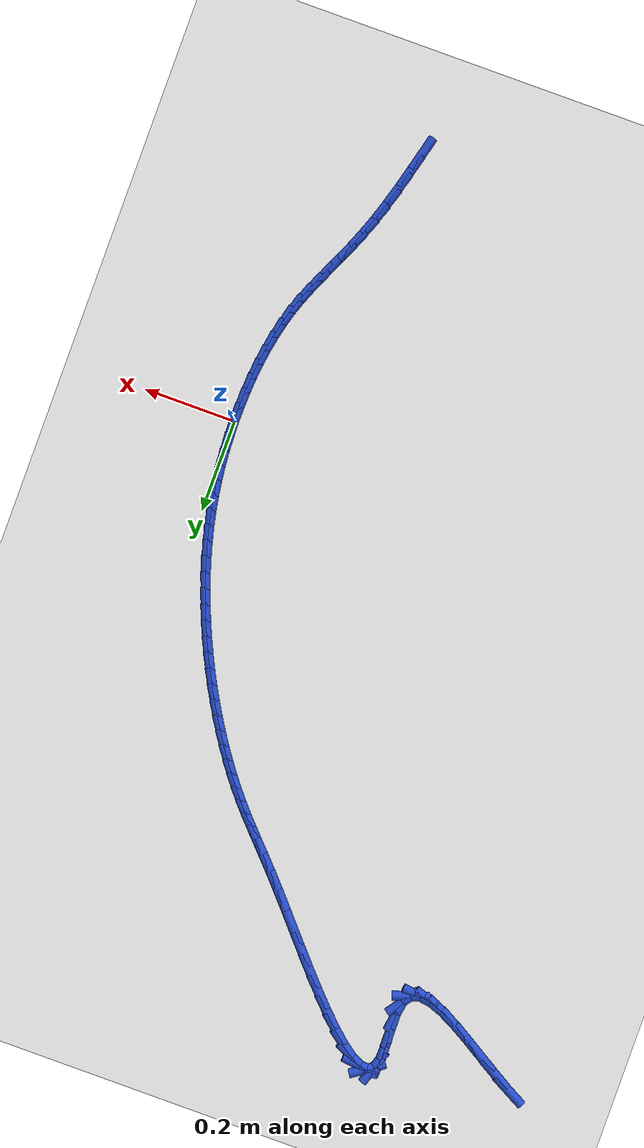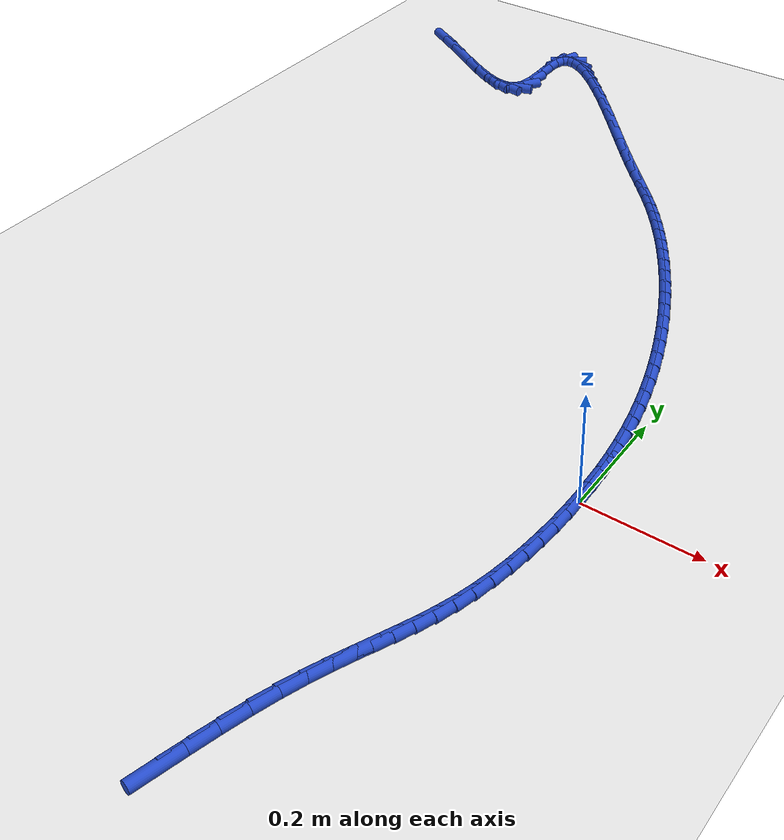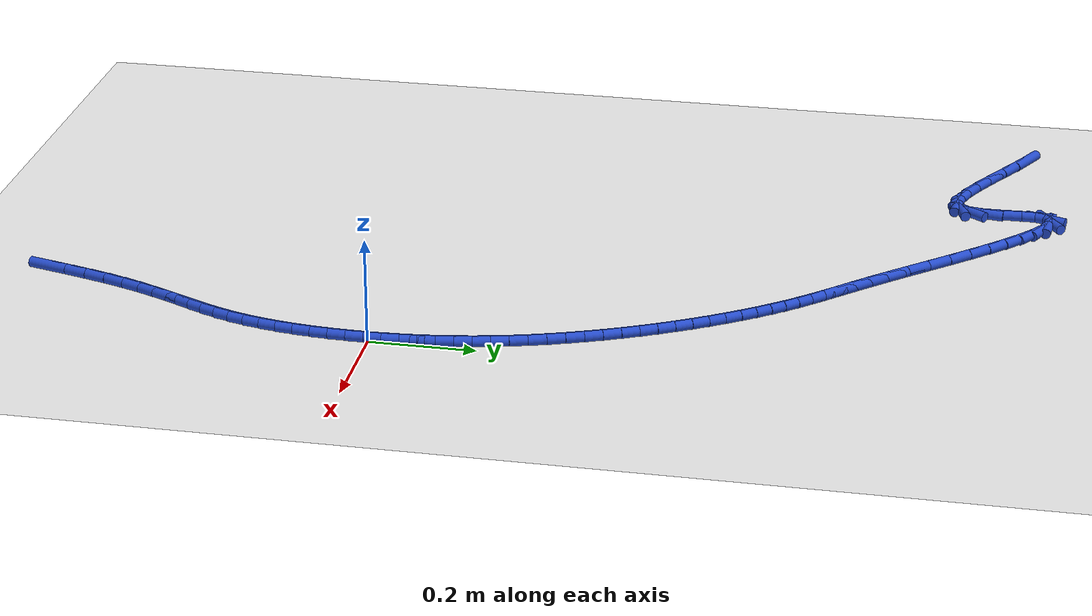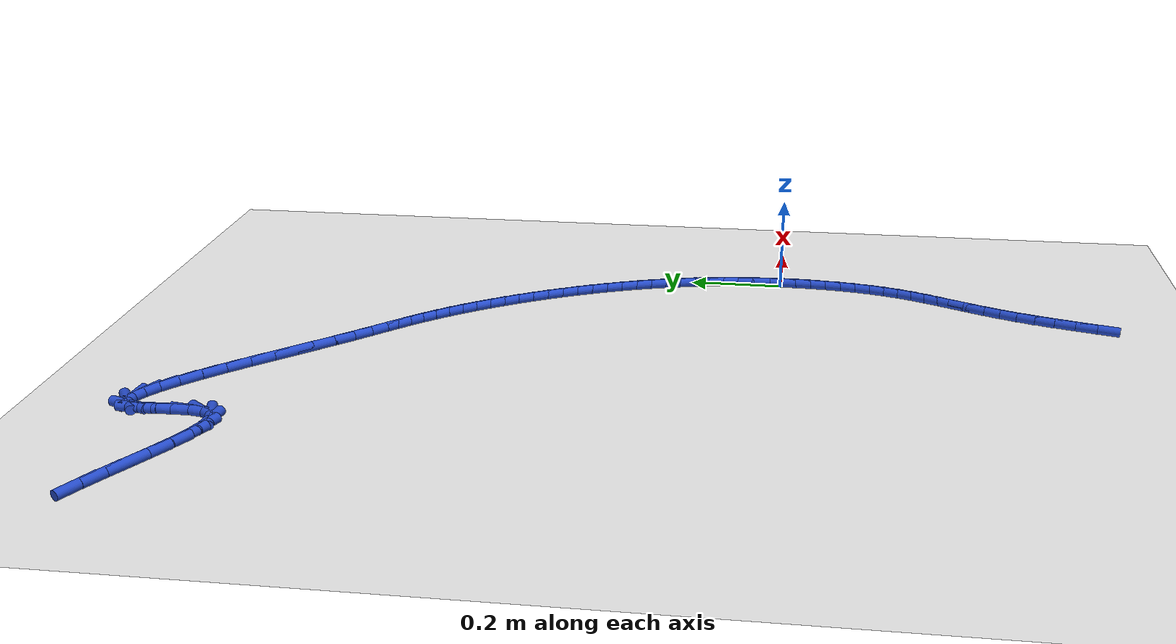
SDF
<sdf version="1.6">
 <world name="default">
  <model name="ground_plane">
   <static>1</static>
   <link name="link">
    <collision name="collision">
     <geometry><plane><normal>0 0 1</normal><size>100 100</size></plane></geometry>
     <surface><friction><ode><mu>100</mu><mu2>50</mu2></ode></friction></surface>
    </collision>
    <visual name="visual">
     <cast_shadows>0</cast_shadows>
     <geometry><plane><normal>0 0 1</normal><size>100 100</size></plane></geometry>
     <material>
      <script><uri>file://media/materials/scripts/gazebo.material</uri><name>Gazebo/WhiteGlow</name></script>
     </material>
    </visual>
   </link>
  </model>
  <model name="line">
   <link name="link_0">
    <pose>1.734723475976807e-17 -2.7755575615628914e-17 0.01 0 1.57 -1.548209915083858</pose>
    <collision name="collision">
     <geometry><cylinder><radius>0.01</radius><length>0.08</length></cylinder></geometry>
    </collision>
    <visual name="visual">
     <material>
      <script><name>Gazebo/Blue</name><uri>file://media/materials/scripts/gazebo.material</uri></script>
     </material>
     <geometry><cylinder><radius>0.01</radius><length>0.08</length></cylinder></geometry>
    </visual>
   </link>
   <link name="link_1">
    <pose>-0.0007454547674477216 0.032998955703278 0.01 0 1.57 -1.5181772568839937</pose>
    <collision name="collision">
     <geometry><cylinder><radius>0.01</radius><length>0.08</length></cylinder></geometry>
    </collision>
    <visual name="visual">
     <material>
      <script><name>Gazebo/Blue</name><uri>file://media/materials/scripts/gazebo.material</uri></script>
     </material>
     <geometry><cylinder><radius>0.01</radius><length>0.08</length></cylinder></geometry>
    </visual>
   </link>
   <link name="link_2">
    <pose>-0.0024687261284675457 0.06571866407017606 0.01 0 1.57 -1.487441928179385</pose>
    <collision name="collision">
     <geometry><cylinder><radius>0.01</radius><length>0.08</length></cylinder></geometry>
    </collision>
    <visual name="visual">
     <material>
      <script><name>Gazebo/Blue</name><uri>file://media/materials/scripts/gazebo.material</uri></script>
     </material>
     <geometry><cylinder><radius>0.01</radius><length>0.08</length></cylinder></geometry>
    </visual>
   </link>
   <link name="link_3">
    <pose>-0.005183070146105424 0.09820710820907626 0.01 0 1.57 -1.4561899604984563</pose>
    <collision name="collision">
     <geometry><cylinder><radius>0.01</radius><length>0.08</length></cylinder></geometry>
    </collision>
    <visual name="visual">
     <material>
      <script><name>Gazebo/Blue</name><uri>file://media/materials/scripts/gazebo.material</uri></script>
     </material>
     <geometry><cylinder><radius>0.01</radius><length>0.08</length></cylinder></geometry>
    </visual>
   </link>
   <link name="link_4">
    <pose>-0.008901742883407327 0.1305122712283608 0.01 0 1.57 -1.4246199189748514</pose>
    <collision name="collision">
     <geometry><cylinder><radius>0.01</radius><length>0.08</length></cylinder></geometry>
    </collision>
    <visual name="visual">
     <material>
      <script><name>Gazebo/Blue</name><uri>file://media/materials/scripts/gazebo.material</uri></script>
     </material>
     <geometry><cylinder><radius>0.01</radius><length>0.08</length></cylinder></geometry>
    </visual>
   </link>
   <link name="link_5">
    <pose>-0.013638000403419214 0.16268213623641178 0.01 0 1.57 -1.392937703355989</pose>
    <collision name="collision">
     <geometry><cylinder><radius>0.01</radius><length>0.08</length></cylinder></geometry>
    </collision>
    <visual name="visual">
     <material>
      <script><name>Gazebo/Blue</name><uri>file://media/materials/scripts/gazebo.material</uri></script>
     </material>
     <geometry><cylinder><radius>0.01</radius><length>0.08</length></cylinder></geometry>
    </visual>
   </link>
   <link name="link_6">
    <pose>-0.01940509876918707 0.19476468634161145 0.01 0 1.57 -1.3613508756848165</pose>
    <collision name="collision">
     <geometry><cylinder><radius>0.01</radius><length>0.08</length></cylinder></geometry>
    </collision>
    <visual name="visual">
     <material>
      <script><name>Gazebo/Blue</name><uri>file://media/materials/scripts/gazebo.material</uri></script>
     </material>
     <geometry><cylinder><radius>0.01</radius><length>0.08</length></cylinder></geometry>
    </visual>
   </link>
   <link name="link_7">
    <pose>-0.026216294043756846 0.22680790465234182 0.01 0 1.57 -1.3300628873312692</pose>
    <collision name="collision">
     <geometry><cylinder><radius>0.01</radius><length>0.08</length></cylinder></geometry>
    </collision>
    <visual name="visual">
     <material>
      <script><name>Gazebo/Blue</name><uri>file://media/materials/scripts/gazebo.material</uri></script>
     </material>
     <geometry><cylinder><radius>0.01</radius><length>0.08</length></cylinder></geometry>
    </visual>
   </link>
   <link name="link_8">
    <pose>-0.034084842290151705 0.2588597742769432 0.01 0 1.57 -1.2994251704821995</pose>
    <collision name="collision">
     <geometry><cylinder><radius>0.01</radius><length>0.08</length></cylinder></geometry>
    </collision>
    <visual name="visual">
     <material>
      <script><name>Gazebo/Blue</name><uri>file://media/materials/scripts/gazebo.material</uri></script>
     </material>
     <geometry><cylinder><radius>0.01</radius><length>0.08</length></cylinder></geometry>
    </visual>
   </link>
   <link name="link_9">
    <pose>-0.043012814997350136 0.29094767351307854 0.01 0 1.57 -1.2700925666562424</pose>
    <collision name="collision">
     <geometry><cylinder><radius>0.01</radius><length>0.08</length></cylinder></geometry>
    </collision>
    <visual name="visual">
     <material>
      <script><name>Gazebo/Blue</name><uri>file://media/materials/scripts/gazebo.material</uri></script>
     </material>
     <geometry><cylinder><radius>0.01</radius><length>0.08</length></cylinder></geometry>
    </visual>
   </link>
   <link name="link_10">
    <pose>-0.05295771547616046 0.32301687481604785 0.01 0 1.57 -1.2420315779892712</pose>
    <collision name="collision">
     <geometry><cylinder><radius>0.01</radius><length>0.08</length></cylinder></geometry>
    </collision>
    <visual name="visual">
     <material>
      <script><name>Gazebo/Blue</name><uri>file://media/materials/scripts/gazebo.material</uri></script>
     </material>
     <geometry><cylinder><radius>0.01</radius><length>0.08</length></cylinder></geometry>
    </visual>
   </link>
   <link name="link_11">
    <pose>-0.06386594736075604 0.35499220223294825 0.01 0 1.57 -1.215044222370325</pose>
    <collision name="collision">
     <geometry><cylinder><radius>0.01</radius><length>0.08</length></cylinder></geometry>
    </collision>
    <visual name="visual">
     <material>
      <script><name>Gazebo/Blue</name><uri>file://media/materials/scripts/gazebo.material</uri></script>
     </material>
     <geometry><cylinder><radius>0.01</radius><length>0.08</length></cylinder></geometry>
    </visual>
   </link>
   <link name="link_12">
    <pose>-0.07568391428531034 0.38679847981087706 0.01 0 1.57 -1.1889445340298277</pose>
    <collision name="collision">
     <geometry><cylinder><radius>0.01</radius><length>0.08</length></cylinder></geometry>
    </collision>
    <visual name="visual">
     <material>
      <script><name>Gazebo/Blue</name><uri>file://media/materials/scripts/gazebo.material</uri></script>
     </material>
     <geometry><cylinder><radius>0.01</radius><length>0.08</length></cylinder></geometry>
    </visual>
   </link>
   <link name="link_13">
    <pose>-0.08835801988399669 0.4183605315969315 0.01 0 1.57 -1.1635559600941956</pose>
    <collision name="collision">
     <geometry><cylinder><radius>0.01</radius><length>0.08</length></cylinder></geometry>
    </collision>
    <visual name="visual">
     <material>
      <script><name>Gazebo/Blue</name><uri>file://media/materials/scripts/gazebo.material</uri></script>
     </material>
     <geometry><cylinder><radius>0.01</radius><length>0.08</length></cylinder></geometry>
    </visual>
   </link>
   <link name="link_14">
    <pose>-0.10183466779098857 0.4496031816382087 0.01 0 1.57 -1.1387087010911852</pose>
    <collision name="collision">
     <geometry><cylinder><radius>0.01</radius><length>0.08</length></cylinder></geometry>
    </collision>
    <visual name="visual">
     <material>
      <script><name>Gazebo/Blue</name><uri>file://media/materials/scripts/gazebo.material</uri></script>
     </material>
     <geometry><cylinder><radius>0.01</radius><length>0.08</length></cylinder></geometry>
    </visual>
   </link>
   <link name="link_15">
    <pose>-0.11606026164045935 0.48045125398180594 0.01 0 1.57 -1.114236984238482</pose>
    <collision name="collision">
     <geometry><cylinder><radius>0.01</radius><length>0.08</length></cylinder></geometry>
    </collision>
    <visual name="visual">
     <material>
      <script><name>Gazebo/Blue</name><uri>file://media/materials/scripts/gazebo.material</uri></script>
     </material>
     <geometry><cylinder><radius>0.01</radius><length>0.08</length></cylinder></geometry>
    </visual>
   </link>
   <link name="link_16">
    <pose>-0.13098120506658248 0.5108295726748207 0.01 0 1.57 -1.0899762307672962</pose>
    <collision name="collision">
     <geometry><cylinder><radius>0.01</radius><length>0.08</length></cylinder></geometry>
    </collision>
    <visual name="visual">
     <material>
      <script><name>Gazebo/Blue</name><uri>file://media/materials/scripts/gazebo.material</uri></script>
     </material>
     <geometry><cylinder><radius>0.01</radius><length>0.08</length></cylinder></geometry>
    </visual>
   </link>
   <link name="link_17">
    <pose>-0.14654390170353132 0.5406629617643499 0.01 0 1.57 -1.0657600549144857</pose>
    <collision name="collision">
     <geometry><cylinder><radius>0.01</radius><length>0.08</length></cylinder></geometry>
    </collision>
    <visual name="visual">
     <material>
      <script><name>Gazebo/Blue</name><uri>file://media/materials/scripts/gazebo.material</uri></script>
     </material>
     <geometry><cylinder><radius>0.01</radius><length>0.08</length></cylinder></geometry>
    </visual>
   </link>
   <link name="link_18">
    <pose>-0.16269475518547932 0.5698762452974911 0.01 0 1.57 -1.041417009392174</pose>
    <collision name="collision">
     <geometry><cylinder><radius>0.01</radius><length>0.08</length></cylinder></geometry>
    </collision>
    <visual name="visual">
     <material>
      <script><name>Gazebo/Blue</name><uri>file://media/materials/scripts/gazebo.material</uri></script>
     </material>
     <geometry><cylinder><radius>0.01</radius><length>0.08</length></cylinder></geometry>
    </visual>
   </link>
   <link name="link_19">
    <pose>-0.17938016914659982 0.5983942473213409 0.01 0 1.57 -1.0167669674362978</pose>
    <collision name="collision">
     <geometry><cylinder><radius>0.01</radius><length>0.08</length></cylinder></geometry>
    </collision>
    <visual name="visual">
     <material>
      <script><name>Gazebo/Blue</name><uri>file://media/materials/scripts/gazebo.material</uri></script>
     </material>
     <geometry><cylinder><radius>0.01</radius><length>0.08</length></cylinder></geometry>
    </visual>
   </link>
   <link name="link_20">
    <pose>-0.19654654722106638 0.6261417918829976 0.01 0 1.57 -0.9916170025211835</pose>
    <collision name="collision">
     <geometry><cylinder><radius>0.01</radius><length>0.08</length></cylinder></geometry>
    </collision>
    <visual name="visual">
     <material>
      <script><name>Gazebo/Blue</name><uri>file://media/materials/scripts/gazebo.material</uri></script>
     </material>
     <geometry><cylinder><radius>0.01</radius><length>0.08</length></cylinder></geometry>
    </visual>
   </link>
   <link name="link_21">
    <pose>-0.2141402930430522 0.6530437030295575 0.01 0 1.57 -0.9657565911903</pose>
    <collision name="collision">
     <geometry><cylinder><radius>0.01</radius><length>0.08</length></cylinder></geometry>
    </collision>
    <visual name="visual">
     <material>
      <script><name>Gazebo/Blue</name><uri>file://media/materials/scripts/gazebo.material</uri></script>
     </material>
     <geometry><cylinder><radius>0.01</radius><length>0.08</length></cylinder></geometry>
    </visual>
   </link>
   <link name="link_22">
    <pose>-0.2321078102467309 0.6790248048081182 0.01 0 1.57 -0.9389519199759675</pose>
    <collision name="collision">
     <geometry><cylinder><radius>0.01</radius><length>0.08</length></cylinder></geometry>
    </collision>
    <visual name="visual">
     <material>
      <script><name>Gazebo/Blue</name><uri>file://media/materials/scripts/gazebo.material</uri></script>
     </material>
     <geometry><cylinder><radius>0.01</radius><length>0.08</length></cylinder></geometry>
    </visual>
   </link>
   <link name="link_23">
    <pose>-0.25039550246627573 0.7040099212657769 0.01 0 1.57 -0.9109390222016234</pose>
    <collision name="collision">
     <geometry><cylinder><radius>0.01</radius><length>0.08</length></cylinder></geometry>
    </collision>
    <visual name="visual">
     <material>
      <script><name>Gazebo/Blue</name><uri>file://media/materials/scripts/gazebo.material</uri></script>
     </material>
     <geometry><cylinder><radius>0.01</radius><length>0.08</length></cylinder></geometry>
    </visual>
   </link>
   <link name="link_24">
    <pose>-0.26894977333586023 0.727923876449631 0.01 0 1.57 -0.8814668753098024</pose>
    <collision name="collision">
     <geometry><cylinder><radius>0.01</radius><length>0.08</length></cylinder></geometry>
    </collision>
    <visual name="visual">
     <material>
      <script><name>Gazebo/Blue</name><uri>file://media/materials/scripts/gazebo.material</uri></script>
     </material>
     <geometry><cylinder><radius>0.01</radius><length>0.08</length></cylinder></geometry>
    </visual>
   </link>
   <link name="link_25">
    <pose>-0.2877200092066353 0.7506975010942152 0.01 0 1.57 -0.8533691286584695</pose>
    <collision name="collision">
     <geometry><cylinder><radius>0.01</radius><length>0.08</length></cylinder></geometry>
    </collision>
    <visual name="visual">
     <material>
      <script><name>Gazebo/Blue</name><uri>file://media/materials/scripts/gazebo.material</uri></script>
     </material>
     <geometry><cylinder><radius>0.01</radius><length>0.08</length></cylinder></geometry>
    </visual>
   </link>
   <link name="link_26">
    <pose>-0.30681451839543594 0.7725816678897727 0.01 0 1.57 -0.8325446957663478</pose>
    <collision name="collision">
     <geometry><cylinder><radius>0.01</radius><length>0.08</length></cylinder></geometry>
    </collision>
    <visual name="visual">
     <material>
      <script><name>Gazebo/Blue</name><uri>file://media/materials/scripts/gazebo.material</uri></script>
     </material>
     <geometry><cylinder><radius>0.01</radius><length>0.08</length></cylinder></geometry>
    </visual>
   </link>
   <link name="link_27">
    <pose>-0.32657705771119194 0.7943014029612485 0.01 0 1.57 -0.8207633309209007</pose>
    <collision name="collision">
     <geometry><cylinder><radius>0.01</radius><length>0.08</length></cylinder></geometry>
    </collision>
    <visual name="visual">
     <material>
      <script><name>Gazebo/Blue</name><uri>file://media/materials/scripts/gazebo.material</uri></script>
     </material>
     <geometry><cylinder><radius>0.01</radius><length>0.08</length></cylinder></geometry>
    </visual>
   </link>
   <link name="link_28">
    <pose>-0.34737041720812895 0.8166200621699572 0.01 0 1.57 -0.8179577794529534</pose>
    <collision name="collision">
     <geometry><cylinder><radius>0.01</radius><length>0.08</length></cylinder></geometry>
    </collision>
    <visual name="visual">
     <material>
      <script><name>Gazebo/Blue</name><uri>file://media/materials/scripts/gazebo.material</uri></script>
     </material>
     <geometry><cylinder><radius>0.01</radius><length>0.08</length></cylinder></geometry>
    </visual>
   </link>
   <link name="link_29">
    <pose>-0.36955738694047285 0.8403010013772138 0.01 0 1.57 -0.8228320672777447</pose>
    <collision name="collision">
     <geometry><cylinder><radius>0.01</radius><length>0.08</length></cylinder></geometry>
    </collision>
    <visual name="visual">
     <material>
      <script><name>Gazebo/Blue</name><uri>file://media/materials/scripts/gazebo.material</uri></script>
     </material>
     <geometry><cylinder><radius>0.01</radius><length>0.08</length></cylinder></geometry>
    </visual>
   </link>
   <link name="link_30">
    <pose>-0.3935007569624495 0.8661075764443324 0.01 0 1.57 -0.8334454599610085</pose>
    <collision name="collision">
     <geometry><cylinder><radius>0.01</radius><length>0.08</length></cylinder></geometry>
    </collision>
    <visual name="visual">
     <material>
      <script><name>Gazebo/Blue</name><uri>file://media/materials/scripts/gazebo.material</uri></script>
     </material>
     <geometry><cylinder><radius>0.01</radius><length>0.08</length></cylinder></geometry>
    </visual>
   </link>
   <link name="link_31">
    <pose>-0.41956331732828483 0.8948031432326289 0.01 0 1.57 -0.8466433084690395</pose>
    <collision name="collision">
     <geometry><cylinder><radius>0.01</radius><length>0.08</length></cylinder></geometry>
    </collision>
    <visual name="visual">
     <material>
      <script><name>Gazebo/Blue</name><uri>file://media/materials/scripts/gazebo.material</uri></script>
     </material>
     <geometry><cylinder><radius>0.01</radius><length>0.08</length></cylinder></geometry>
    </visual>
   </link>
   <link name="link_32">
    <pose>-0.44801624077959057 0.9269736039240537 0.01 0 1.57 -0.8539610731692683</pose>
    <collision name="collision">
     <geometry><cylinder><radius>0.01</radius><length>0.08</length></cylinder></geometry>
    </collision>
    <visual name="visual">
     <material>
      <script><name>Gazebo/Blue</name><uri>file://media/materials/scripts/gazebo.material</uri></script>
     </material>
     <geometry><cylinder><radius>0.01</radius><length>0.08</length></cylinder></geometry>
    </visual>
   </link>
   <link name="link_33">
    <pose>-0.47846133768090254 0.961908371933856 0.01 0 1.57 -0.8538279165964507</pose>
    <collision name="collision">
     <geometry><cylinder><radius>0.01</radius><length>0.08</length></cylinder></geometry>
    </collision>
    <visual name="visual">
     <material>
      <script><name>Gazebo/Blue</name><uri>file://media/materials/scripts/gazebo.material</uri></script>
     </material>
     <geometry><cylinder><radius>0.01</radius><length>0.08</length></cylinder></geometry>
    </visual>
   </link>
   <link name="link_34">
    <pose>-0.5102034129683446 0.9983215905175425 0.01 0 1.57 -0.8471175512862784</pose>
    <collision name="collision">
     <geometry><cylinder><radius>0.01</radius><length>0.08</length></cylinder></geometry>
    </collision>
    <visual name="visual">
     <material>
      <script><name>Gazebo/Blue</name><uri>file://media/materials/scripts/gazebo.material</uri></script>
     </material>
     <geometry><cylinder><radius>0.01</radius><length>0.08</length></cylinder></geometry>
    </visual>
   </link>
   <link name="link_35">
    <pose>-0.5425459338104048 1.0349248118069303 0.01 0 1.57 -0.8334538950789813</pose>
    <collision name="collision">
     <geometry><cylinder><radius>0.01</radius><length>0.08</length></cylinder></geometry>
    </collision>
    <visual name="visual">
     <material>
      <script><name>Gazebo/Blue</name><uri>file://media/materials/scripts/gazebo.material</uri></script>
     </material>
     <geometry><cylinder><radius>0.01</radius><length>0.08</length></cylinder></geometry>
    </visual>
   </link>
   <link name="link_36">
    <pose>-0.5747923673755702 1.070429587933834 0.01 0 1.57 -0.8111633435640325</pose>
    <collision name="collision">
     <geometry><cylinder><radius>0.01</radius><length>0.08</length></cylinder></geometry>
    </collision>
    <visual name="visual">
     <material>
      <script><name>Gazebo/Blue</name><uri>file://media/materials/scripts/gazebo.material</uri></script>
     </material>
     <geometry><cylinder><radius>0.01</radius><length>0.08</length></cylinder></geometry>
    </visual>
   </link>
   <link name="link_37">
    <pose>-0.6062461808323287 1.1035474710300708 0.01 0 1.57 -0.7766095846918781</pose>
    <collision name="collision">
     <geometry><cylinder><radius>0.01</radius><length>0.08</length></cylinder></geometry>
    </collision>
    <visual name="visual">
     <material>
      <script><name>Gazebo/Blue</name><uri>file://media/materials/scripts/gazebo.material</uri></script>
     </material>
     <geometry><cylinder><radius>0.01</radius><length>0.08</length></cylinder></geometry>
    </visual>
   </link>
   <link name="link_38">
    <pose>-0.6362108413491675 1.1329900132274562 0.01 0 1.57 -0.7223291303064018</pose>
    <collision name="collision">
     <geometry><cylinder><radius>0.01</radius><length>0.08</length></cylinder></geometry>
    </collision>
    <visual name="visual">
     <material>
      <script><name>Gazebo/Blue</name><uri>file://media/materials/scripts/gazebo.material</uri></script>
     </material>
     <geometry><cylinder><radius>0.01</radius><length>0.08</length></cylinder></geometry>
    </visual>
   </link>
   <link name="link_39">
    <pose>-0.6639898160945746 1.1574687666578067 0.01 0 1.57 -0.6319359223688805</pose>
    <collision name="collision">
     <geometry><cylinder><radius>0.01</radius><length>0.08</length></cylinder></geometry>
    </collision>
    <visual name="visual">
     <material>
      <script><name>Gazebo/Blue</name><uri>file://media/materials/scripts/gazebo.material</uri></script>
     </material>
     <geometry><cylinder><radius>0.01</radius><length>0.08</length></cylinder></geometry>
    </visual>
   </link>
   <link name="link_40">
    <pose>-0.6888865722370374 1.175695283452938 0.01 0 1.57 -0.46465394815971384</pose>
    <collision name="collision">
     <geometry><cylinder><radius>0.01</radius><length>0.08</length></cylinder></geometry>
    </collision>
    <visual name="visual">
     <material>
      <script><name>Gazebo/Blue</name><uri>file://media/materials/scripts/gazebo.material</uri></script>
     </material>
     <geometry><cylinder><radius>0.01</radius><length>0.08</length></cylinder></geometry>
    </visual>
   </link>
   <link name="link_41">
    <pose>-0.7102045769450434 1.1863811157446658 0.01 0 1.57 -0.10851590374548921</pose>
    <collision name="collision">
     <geometry><cylinder><radius>0.01</radius><length>0.08</length></cylinder></geometry>
    </collision>
    <visual name="visual">
     <material>
      <script><name>Gazebo/Blue</name><uri>file://media/materials/scripts/gazebo.material</uri></script>
     </material>
     <geometry><cylinder><radius>0.01</radius><length>0.08</length></cylinder></geometry>
    </visual>
   </link>
   <link name="link_42">
    <pose>-0.72724729738708 1.188237815664807 0.01 0 1.57 0.6001540998965172</pose>
    <collision name="collision">
     <geometry><cylinder><radius>0.01</radius><length>0.08</length></cylinder></geometry>
    </collision>
    <visual name="visual">
     <material>
      <script><name>Gazebo/Blue</name><uri>file://media/materials/scripts/gazebo.material</uri></script>
     </material>
     <geometry><cylinder><radius>0.01</radius><length>0.08</length></cylinder></geometry>
    </visual>
   </link>
   <link name="link_43">
    <pose>-0.7393182007316359 1.1799769353451777 0.01 0 1.57 1.2559865538017163</pose>
    <collision name="collision">
     <geometry><cylinder><radius>0.01</radius><length>0.08</length></cylinder></geometry>
    </collision>
    <visual name="visual">
     <material>
      <script><name>Gazebo/Blue</name><uri>file://media/materials/scripts/gazebo.material</uri></script>
     </material>
     <geometry><cylinder><radius>0.01</radius><length>0.08</length></cylinder></geometry>
    </visual>
   </link>
   <link name="link_44">
    <pose>-0.7457218643800103 1.160312021067337 0.01 0 1.57 1.537572953300119</pose>
    <collision name="collision">
     <geometry><cylinder><radius>0.01</radius><length>0.08</length></cylinder></geometry>
    </collision>
    <visual name="visual">
     <material>
      <script><name>Gazebo/Blue</name><uri>file://media/materials/scripts/gazebo.material</uri></script>
     </material>
     <geometry><cylinder><radius>0.01</radius><length>0.08</length></cylinder></geometry>
    </visual>
   </link>
   <link name="link_45">
    <pose>-0.7467389472333037 1.1297098123615996 0.01 0 1.57 -1.5341523114455065</pose>
    <collision name="collision">
     <geometry><cylinder><radius>0.01</radius><length>0.08</length></cylinder></geometry>
    </collision>
    <visual name="visual">
     <material>
      <script><name>Gazebo/Blue</name><uri>file://media/materials/scripts/gazebo.material</uri></script>
     </material>
     <geometry><cylinder><radius>0.01</radius><length>0.08</length></cylinder></geometry>
    </visual>
   </link>
   <link name="link_46">
    <pose>-0.7454152828755848 1.0936037299081738 0.01 0 1.57 -1.5670487115709915</pose>
    <collision name="collision">
     <geometry><cylinder><radius>0.01</radius><length>0.08</length></cylinder></geometry>
    </collision>
    <visual name="visual">
     <material>
      <script><name>Gazebo/Blue</name><uri>file://media/materials/scripts/gazebo.material</uri></script>
     </material>
     <geometry><cylinder><radius>0.01</radius><length>0.08</length></cylinder></geometry>
    </visual>
   </link>
   <link name="link_47">
    <pose>-0.7452829797812667 1.05830061925493 0.01 0 1.57 1.4094347121905135</pose>
    <collision name="collision">
     <geometry><cylinder><radius>0.01</radius><length>0.08</length></cylinder></geometry>
    </collision>
    <visual name="visual">
     <material>
      <script><name>Gazebo/Blue</name><uri>file://media/materials/scripts/gazebo.material</uri></script>
     </material>
     <geometry><cylinder><radius>0.01</radius><length>0.08</length></cylinder></geometry>
    </visual>
   </link>
   <link name="link_48">
    <pose>-0.749872634406647 1.0301046270863108 0.01 0 1.57 0.9552593737708631</pose>
    <collision name="collision">
     <geometry><cylinder><radius>0.01</radius><length>0.08</length></cylinder></geometry>
    </collision>
    <visual name="visual">
     <material>
      <script><name>Gazebo/Blue</name><uri>file://media/materials/scripts/gazebo.material</uri></script>
     </material>
     <geometry><cylinder><radius>0.01</radius><length>0.08</length></cylinder></geometry>
    </visual>
   </link>
   <link name="link_49">
    <pose>-0.761659916201311 1.0134369174109057 0.01 0 1.57 0.3074430345813861</pose>
    <collision name="collision">
     <geometry><cylinder><radius>0.01</radius><length>0.08</length></cylinder></geometry>
    </collision>
    <visual name="visual">
     <material>
      <script><name>Gazebo/Blue</name><uri>file://media/materials/scripts/gazebo.material</uri></script>
     </material>
     <geometry><cylinder><radius>0.01</radius><length>0.08</length></cylinder></geometry>
    </visual>
   </link>
   <link name="link_50">
    <pose>-0.7802211674715076 1.007543525770775 0.01 0 1.57 -0.13214751877878148</pose>
    <collision name="collision">
     <geometry><cylinder><radius>0.01</radius><length>0.08</length></cylinder></geometry>
    </collision>
    <visual name="visual">
     <material>
      <script><name>Gazebo/Blue</name><uri>file://media/materials/scripts/gazebo.material</uri></script>
     </material>
     <geometry><cylinder><radius>0.01</radius><length>0.08</length></cylinder></geometry>
    </visual>
   </link>
   <link name="link_51">
    <pose>-0.8046389933685395 1.0107891959188111 0.01 0 1.57 -0.3510015388121623</pose>
    <collision name="collision">
     <geometry><cylinder><radius>0.01</radius><length>0.08</length></cylinder></geometry>
    </collision>
    <visual name="visual">
     <material>
      <script><name>Gazebo/Blue</name><uri>file://media/materials/scripts/gazebo.material</uri></script>
     </material>
     <geometry><cylinder><radius>0.01</radius><length>0.08</length></cylinder></geometry>
    </visual>
   </link>
   <link name="link_52">
    <pose>-0.8339959990437096 1.0215386716079062 0.01 0 1.57 -0.46193559147457736</pose>
    <collision name="collision">
     <geometry><cylinder><radius>0.01</radius><length>0.08</length></cylinder></geometry>
    </collision>
    <visual name="visual">
     <material>
      <script><name>Gazebo/Blue</name><uri>file://media/materials/scripts/gazebo.material</uri></script>
     </material>
     <geometry><cylinder><radius>0.01</radius><length>0.08</length></cylinder></geometry>
    </visual>
   </link>
   <link name="link_53">
    <pose>-0.8673747896483212 1.0381566965909526 0.01 0 1.57 -0.5192243445969936</pose>
    <collision name="collision">
     <geometry><cylinder><radius>0.01</radius><length>0.08</length></cylinder></geometry>
    </collision>
    <visual name="visual">
     <material>
      <script><name>Gazebo/Blue</name><uri>file://media/materials/scripts/gazebo.material</uri></script>
     </material>
     <geometry><cylinder><radius>0.01</radius><length>0.08</length></cylinder></geometry>
    </visual>
   </link>
   <link name="link_54">
    <pose>-0.9038579703336772 1.059008014620842 0.01 0 1.57 -0.5451075635600278</pose>
    <collision name="collision">
     <geometry><cylinder><radius>0.01</radius><length>0.08</length></cylinder></geometry>
    </collision>
    <visual name="visual">
     <material>
      <script><name>Gazebo/Blue</name><uri>file://media/materials/scripts/gazebo.material</uri></script>
     </material>
     <geometry><cylinder><radius>0.01</radius><length>0.08</length></cylinder></geometry>
    </visual>
   </link>
   <link name="link_55">
    <pose>-0.9425281462510804 1.082457369450467 0.01 0 1.57 -0.5486313282352184</pose>
    <collision name="collision">
     <geometry><cylinder><radius>0.01</radius><length>0.08</length></cylinder></geometry>
    </collision>
    <visual name="visual">
     <material>
      <script><name>Gazebo/Blue</name><uri>file://media/materials/scripts/gazebo.material</uri></script>
     </material>
     <geometry><cylinder><radius>0.01</radius><length>0.08</length></cylinder></geometry>
    </visual>
   </link>
   <link name="link_56">
    <pose>-0.9824679225518341 1.1068695048327193 0.01 0 1.57 -0.5324335473141705</pose>
    <collision name="collision">
     <geometry><cylinder><radius>0.01</radius><length>0.08</length></cylinder></geometry>
    </collision>
    <visual name="visual">
     <material>
      <script><name>Gazebo/Blue</name><uri>file://media/materials/scripts/gazebo.material</uri></script>
     </material>
     <geometry><cylinder><radius>0.01</radius><length>0.08</length></cylinder></geometry>
    </visual>
   </link>
   <link name="link_57">
    <pose>-1.0227599043872415 1.1306091645204914 0.01 0 1.57 -0.4947328696898481</pose>
    <collision name="collision">
     <geometry><cylinder><radius>0.01</radius><length>0.08</length></cylinder></geometry>
    </collision>
    <visual name="visual">
     <material>
      <script><name>Gazebo/Blue</name><uri>file://media/materials/scripts/gazebo.material</uri></script>
     </material>
     <geometry><cylinder><radius>0.01</radius><length>0.08</length></cylinder></geometry>
    </visual>
   </link>
   <link name="link_220">
    <pose>-0.18110782496518593 -0.6640848370879691 0.01 0 1.57 1.3174505041915037</pose>
    <collision name="collision">
     <geometry><cylinder><radius>0.01</radius><length>0.08</length></cylinder></geometry>
    </collision>
    <visual name="visual">
     <material>
      <script><name>Gazebo/Blue</name><uri>file://media/materials/scripts/gazebo.material</uri></script>
     </material>
     <geometry><cylinder><radius>0.01</radius><length>0.08</length></cylinder></geometry>
    </visual>
   </link>
   <link name="link_221">
    <pose>-0.1698679117743942 -0.620672227485001 0.01 0 1.57 1.3044371494900824</pose>
    <collision name="collision">
     <geometry><cylinder><radius>0.01</radius><length>0.08</length></cylinder></geometry>
    </collision>
    <visual name="visual">
     <material>
      <script><name>Gazebo/Blue</name><uri>file://media/materials/scripts/gazebo.material</uri></script>
     </material>
     <geometry><cylinder><radius>0.01</radius><length>0.08</length></cylinder></geometry>
    </visual>
   </link>
   <link name="link_222">
    <pose>-0.15835187337406 -0.5784645663481087 0.01 0 1.57 1.2840102525071602</pose>
    <collision name="collision">
     <geometry><cylinder><radius>0.01</radius><length>0.08</length></cylinder></geometry>
    </collision>
    <visual name="visual">
     <material>
      <script><name>Gazebo/Blue</name><uri>file://media/materials/scripts/gazebo.material</uri></script>
     </material>
     <geometry><cylinder><radius>0.01</radius><length>0.08</length></cylinder></geometry>
    </visual>
   </link>
   <link name="link_223">
    <pose>-0.14643858792928835 -0.5380690456847252 0.01 0 1.57 1.2544368568434872</pose>
    <collision name="collision">
     <geometry><cylinder><radius>0.01</radius><length>0.08</length></cylinder></geometry>
    </collision>
    <visual name="visual">
     <material>
      <script><name>Gazebo/Blue</name><uri>file://media/materials/scripts/gazebo.material</uri></script>
     </material>
     <geometry><cylinder><radius>0.01</radius><length>0.08</length></cylinder></geometry>
    </visual>
   </link>
   <link name="link_224">
    <pose>-0.13400693360518523 -0.5000928575022867 0.01 0 1.57 1.216257113840234</pose>
    <collision name="collision">
     <geometry><cylinder><radius>0.01</radius><length>0.08</length></cylinder></geometry>
    </collision>
    <visual name="visual">
     <material>
      <script><name>Gazebo/Blue</name><uri>file://media/materials/scripts/gazebo.material</uri></script>
     </material>
     <geometry><cylinder><radius>0.01</radius><length>0.08</length></cylinder></geometry>
    </visual>
   </link>
   <link name="link_225">
    <pose>-0.1209992857961928 -0.46495425265939744 0.01 0 1.57 1.1816685491420962</pose>
    <collision name="collision">
     <geometry><cylinder><radius>0.01</radius><length>0.08</length></cylinder></geometry>
    </collision>
    <visual name="visual">
     <material>
      <script><name>Gazebo/Blue</name><uri>file://media/materials/scripts/gazebo.material</uri></script>
     </material>
     <geometry><cylinder><radius>0.01</radius><length>0.08</length></cylinder></geometry>
    </visual>
   </link>
   <link name="link_226">
    <pose>-0.10761395149179087 -0.43230993682453817 0.01 0 1.57 1.1563230483796836</pose>
    <collision name="collision">
     <geometry><cylinder><radius>0.01</radius><length>0.08</length></cylinder></geometry>
    </collision>
    <visual name="visual">
     <material>
      <script><name>Gazebo/Blue</name><uri>file://media/materials/scripts/gazebo.material</uri></script>
     </material>
     <geometry><cylinder><radius>0.01</radius><length>0.08</length></cylinder></geometry>
    </visual>
   </link>
   <link name="link_227">
    <pose>-0.09411370995859047 -0.40162477318367545 0.01 0 1.57 1.142701329522191</pose>
    <collision name="collision">
     <geometry><cylinder><radius>0.01</radius><length>0.08</length></cylinder></geometry>
    </collision>
    <visual name="visual">
     <material>
      <script><name>Gazebo/Blue</name><uri>file://media/materials/scripts/gazebo.material</uri></script>
     </material>
     <geometry><cylinder><radius>0.01</radius><length>0.08</length></cylinder></geometry>
    </visual>
   </link>
   <link name="link_228">
    <pose>-0.08076134046425096 -0.3723636249196563 0.01 0 1.57 1.1428483810208934</pose>
    <collision name="collision">
     <geometry><cylinder><radius>0.01</radius><length>0.08</length></cylinder></geometry>
    </collision>
    <visual name="visual">
     <material>
      <script><name>Gazebo/Blue</name><uri>file://media/materials/scripts/gazebo.material</uri></script>
     </material>
     <geometry><cylinder><radius>0.01</radius><length>0.08</length></cylinder></geometry>
    </visual>
   </link>
   <link name="link_229">
    <pose>-0.06781962227643175 -0.34399135521532814 0.01 0 1.57 1.1580809172654147</pose>
    <collision name="collision">
     <geometry><cylinder><radius>0.01</radius><length>0.08</length></cylinder></geometry>
    </collision>
    <visual name="visual">
     <material>
      <script><name>Gazebo/Blue</name><uri>file://media/materials/scripts/gazebo.material</uri></script>
     </material>
     <geometry><cylinder><radius>0.01</radius><length>0.08</length></cylinder></geometry>
    </visual>
   </link>
   <link name="link_230">
    <pose>-0.0555513346627919 -0.3159728272535375 0.01 0 1.57 1.188698011742065</pose>
    <collision name="collision">
     <geometry><cylinder><radius>0.01</radius><length>0.08</length></cylinder></geometry>
    </collision>
    <visual name="visual">
     <material>
      <script><name>Gazebo/Blue</name><uri>file://media/materials/scripts/gazebo.material</uri></script>
     </material>
     <geometry><cylinder><radius>0.01</radius><length>0.08</length></cylinder></geometry>
    </visual>
   </link>
   <link name="link_231">
    <pose>-0.04421925689099141 -0.28777290421713275 0.01 0 1.57 1.2337417081538975</pose>
    <collision name="collision">
     <geometry><cylinder><radius>0.01</radius><length>0.08</length></cylinder></geometry>
    </collision>
    <visual name="visual">
     <material>
      <script><name>Gazebo/Blue</name><uri>file://media/materials/scripts/gazebo.material</uri></script>
     </material>
     <geometry><cylinder><radius>0.01</radius><length>0.08</length></cylinder></geometry>
    </visual>
   </link>
   <link name="link_232">
    <pose>-0.03408616822868935 -0.2588564492889607 0.01 0 1.57 1.2881767761798886</pose>
    <collision name="collision">
     <geometry><cylinder><radius>0.01</radius><length>0.08</length></cylinder></geometry>
    </collision>
    <visual name="visual">
     <material>
      <script><name>Gazebo/Blue</name><uri>file://media/materials/scripts/gazebo.material</uri></script>
     </material>
     <geometry><cylinder><radius>0.01</radius><length>0.08</length></cylinder></geometry>
    </visual>
   </link>
   <link name="link_233">
    <pose>-0.025360890393231954 -0.22880996364413073 0.01 0 1.57 1.3394840501175431</pose>
    <collision name="collision">
     <geometry><cylinder><radius>0.01</radius><length>0.08</length></cylinder></geometry>
    </collision>
    <visual name="visual">
     <material>
      <script><name>Gazebo/Blue</name><uri>file://media/materials/scripts/gazebo.material</uri></script>
     </material>
     <geometry><cylinder><radius>0.01</radius><length>0.08</length></cylinder></geometry>
    </visual>
   </link>
   <link name="link_234">
    <pose>-0.01803559106824049 -0.19770835761504243 0.01 0 1.57 1.385594546273885</pose>
    <collision name="collision">
     <geometry><cylinder><radius>0.01</radius><length>0.08</length></cylinder></geometry>
    </collision>
    <visual name="visual">
     <material>
      <script><name>Gazebo/Blue</name><uri>file://media/materials/scripts/gazebo.material</uri></script>
     </material>
     <geometry><cylinder><radius>0.01</radius><length>0.08</length></cylinder></geometry>
    </visual>
   </link>
   <link name="link_235">
    <pose>-0.012048067685247221 -0.16574910989134156 0.01 0 1.57 1.4273363353049477</pose>
    <collision name="collision">
     <geometry><cylinder><radius>0.01</radius><length>0.08</length></cylinder></geometry>
    </collision>
    <visual name="visual">
     <material>
      <script><name>Gazebo/Blue</name><uri>file://media/materials/scripts/gazebo.material</uri></script>
     </material>
     <geometry><cylinder><radius>0.01</radius><length>0.08</length></cylinder></geometry>
    </visual>
   </link>
   <link name="link_236">
    <pose>-0.007336117675673463 -0.13312969916292386 0.01 0 1.57 1.465433491761853</pose>
    <collision name="collision">
     <geometry><cylinder><radius>0.01</radius><length>0.08</length></cylinder></geometry>
    </collision>
    <visual name="visual">
     <material>
      <script><name>Gazebo/Blue</name><uri>file://media/materials/scripts/gazebo.material</uri></script>
     </material>
     <geometry><cylinder><radius>0.01</radius><length>0.08</length></cylinder></geometry>
    </visual>
   </link>
   <link name="link_237">
    <pose>-0.0038375384709405415 -0.10004760411968515 0.01 0 1.57 1.5005194183269674</pose>
    <collision name="collision">
     <geometry><cylinder><radius>0.01</radius><length>0.08</length></cylinder></geometry>
    </collision>
    <visual name="visual">
     <material>
      <script><name>Gazebo/Blue</name><uri>file://media/materials/scripts/gazebo.material</uri></script>
     </material>
     <geometry><cylinder><radius>0.01</radius><length>0.08</length></cylinder></geometry>
    </visual>
   </link>
   <link name="link_238">
    <pose>-0.001490127502469723 -0.06670030345152025 0.01 0 1.57 1.5331530590007745</pose>
    <collision name="collision">
     <geometry><cylinder><radius>0.01</radius><length>0.08</length></cylinder></geometry>
    </collision>
    <visual name="visual">
     <material>
      <script><name>Gazebo/Blue</name><uri>file://media/materials/scripts/gazebo.material</uri></script>
     </material>
     <geometry><cylinder><radius>0.01</radius><length>0.08</length></cylinder></geometry>
    </visual>
   </link>
   <link name="link_239">
    <pose>-0.00023168220168245414 -0.03328527584832684 0.01 0 1.57 1.5638359380245195</pose>
    <collision name="collision">
     <geometry><cylinder><radius>0.01</radius><length>0.08</length></cylinder></geometry>
    </collision>
    <visual name="visual">
     <material>
      <script><name>Gazebo/Blue</name><uri>file://media/materials/scripts/gazebo.material</uri></script>
     </material>
     <geometry><cylinder><radius>0.01</radius><length>0.08</length></cylinder></geometry>
    </visual>
   </link>
   <link name="link_240">
    <pose>2.3418766925686896e-17 2.42861286636753e-16 0.01 0 1.57 -1.5485632859700402</pose>
    <collision name="collision">
     <geometry><cylinder><radius>0.01</radius><length>0.08</length></cylinder></geometry>
    </collision>
    <visual name="visual">
     <material>
      <script><name>Gazebo/Blue</name><uri>file://media/materials/scripts/gazebo.material</uri></script>
     </material>
     <geometry><cylinder><radius>0.01</radius><length>0.08</length></cylinder></geometry>
    </visual>
   </link>
   <link name="link_241">
    <pose>-0.0007328783288436114 0.032958045403565187 0.01 0 1.57 -1.520420602589948</pose>
    <collision name="collision">
     <geometry><cylinder><radius>0.01</radius><length>0.08</length></cylinder></geometry>
    </collision>
    <visual name="visual">
     <material>
      <script><name>Gazebo/Blue</name><uri>file://media/materials/scripts/gazebo.material</uri></script>
     </material>
     <geometry><cylinder><radius>0.01</radius><length>0.08</length></cylinder></geometry>
    </visual>
   </link>
   <link name="link_242">
    <pose>-0.002368114619634679 0.06539138167247222 0.01 0 1.57 -1.5345976700078905</pose>
    <collision name="collision">
     <geometry><cylinder><radius>0.01</radius><length>0.08</length></cylinder></geometry>
    </collision>
    <visual name="visual">
     <material>
      <script><name>Gazebo/Blue</name><uri>file://media/materials/scripts/gazebo.material</uri></script>
     </material>
     <geometry><cylinder><radius>0.01</radius><length>0.08</length></cylinder></geometry>
    </visual>
   </link>
  </model>
 </world>
</sdf>
